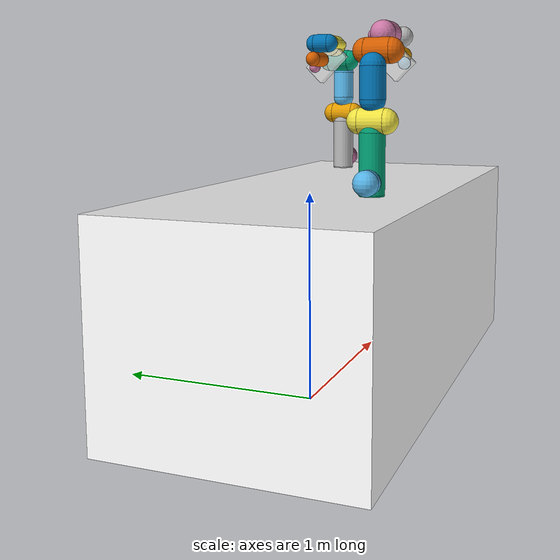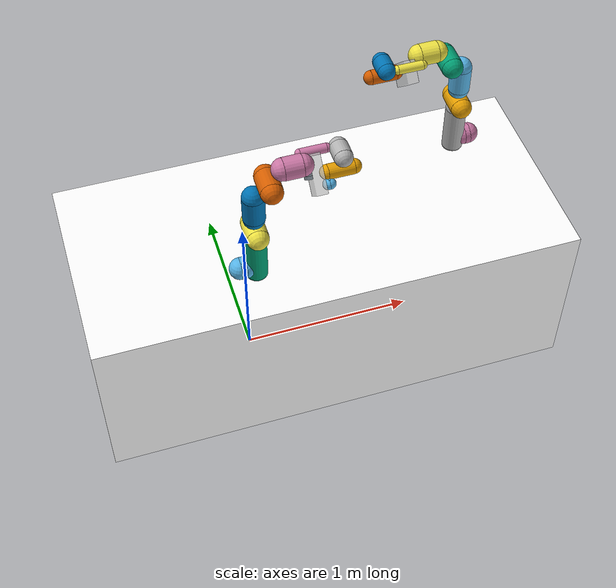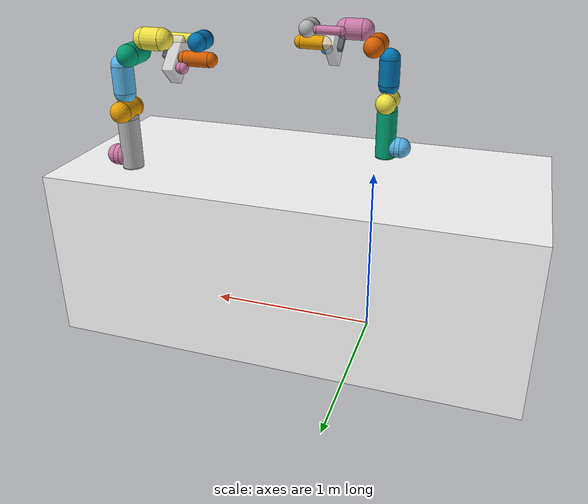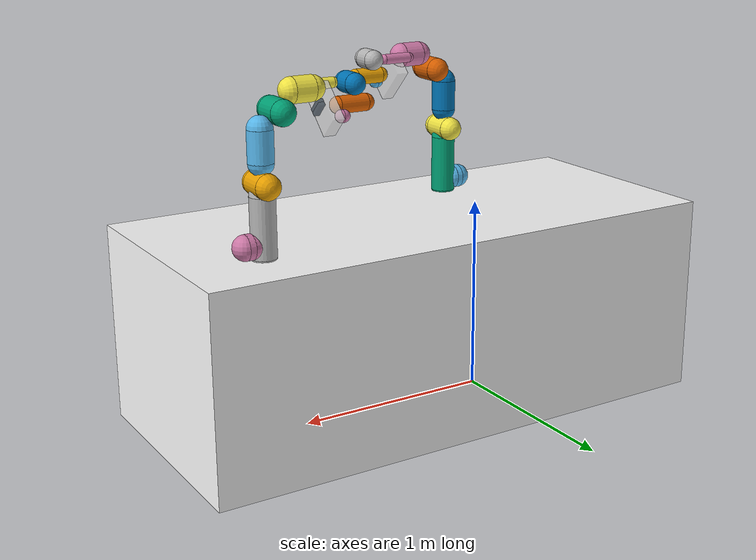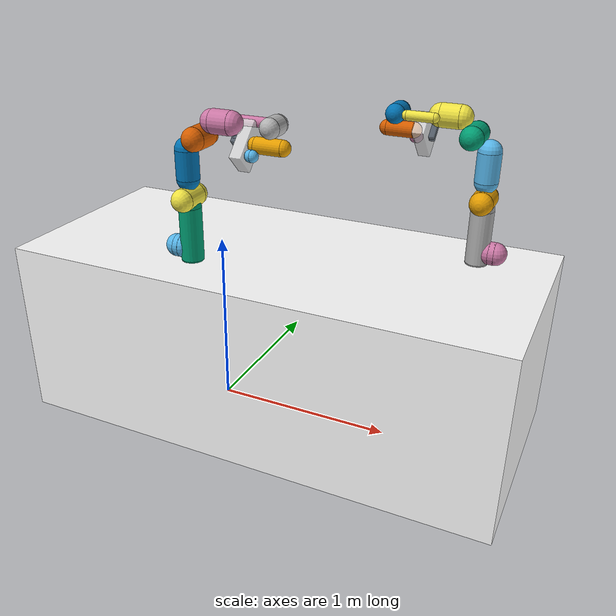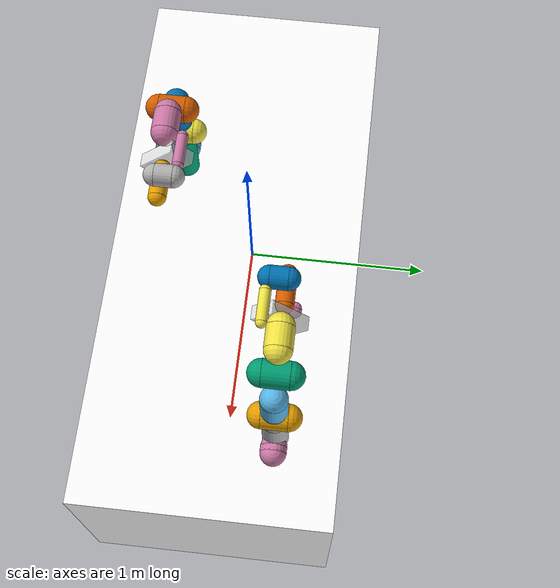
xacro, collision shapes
<?xml version="1.0" encoding="utf-8"?>
<robot xmlns:xacro="http://www.ros.org/wiki/xacro" name="panda">
  <xacro:include filename="$(find franka_description)/robots/panda_arm.xacro"/>
  <xacro:include filename="$(find franka_description)/robots/hand.xacro"/>
  <xacro:include filename="dyros_assembly_gripper.xacro"/>
  <xacro:include filename="dyros_assembly_gripper2.xacro"/>

  <!-- box shaped table as base for the 3 Pandas -->
  <link name="base">
    <visual>
      <origin xyz="0.4 0 0.5" rpy="0 0 0"/>
      <geometry>
        <box size="2.7 1.2 1" />
      </geometry>
      <material name="White">
        <color rgba="1.0 1.0 1.0 1.0"/>
      </material>
    </visual>
    <collision>
      <origin xyz="0.4 0 0.5" rpy="0 0 0  "/>
      <geometry>
        <box size="2.7 1.2 1" />
      </geometry>
    </collision>
  </link>

  <!-- right arm with gripper -->
  <xacro:panda_arm arm_id="panda_right" connected_to="base"  xyz="0 -0.3 1.006"
  sd0="0.01" sd1="0.01" sd2="0.01" sd3="0.01" sd4="0.01" sd5="0.01" sd6="0.01" sd7="0.01" sd8="0.001" cable="0.15"
a1="-0.00153055068483914" d1="-0.000772485919009139" theta1="-0.00374187596482555" alpha1="-0.00183369895482027"
a2="0.000163834922530543" d2="-0.000212890734425727" theta2="-0.0041768339596184" alpha2="0.00292223805919776"
a3="-2.60271767179549e-05" d3="-0.00100930869860036" theta3="0.00208915153420725" alpha3="-0.00362801030623702"
a4="0.0002126348171224" d4="0.00108679894872676" theta4="9.81965015663654e-05" alpha4="0.00292912798333623"
a5="-0.00136529072609946" d5="-5.62799006356164e-05" theta5="0.0139799357258803" alpha5="-0.00122374898174726"
a6="-0.000502587880406569" d6="0.000336192838117574" theta6="-0.0139808833528828" alpha6="-0.00268675457630875"
a7="-0.00104647166032287" d7="0.000135297170834114" theta7="0.00498364620994882" alpha7="0.000349775306996936" />
  <xacro:dyros_assembly_gripper2 ns="panda_right" rpy="0 0 ${-pi/4}" connected_to="panda_right_link8" />

   <!-- top arm with gripper -->
  <xacro:panda_arm arm_id="panda_top" connected_to="base"  xyz="1.35 0.3 1.006" rpy="0 0 ${pi}"
  sd0="0.01" sd1="0.01" sd2="0.01" sd3="0.01" sd4="0.01" sd5="0.005" sd6="0.005" sd7="0.01" sd8="0.001" cable="0.005"
a1="-0.000171539356569936" d1="0.000591551783574421" theta1="0.00119525002639617" alpha1="-0.00650097874689066"
a2="-0.000330274824097498" d2="-0.000124214443868683" theta2="7.10962210595555e-05" alpha2="0.00166835357174836"
a3="-0.00027921463294522" d3="-0.000683991542242173" theta3="0.00203760570771006" alpha3="-0.0018819778569208"
a4="-0.000355247972007034" d4="0.000891508331427601" theta4="-0.00513318787489872" alpha4="0.000168196477584221"
a5="0.000190817101859644" d5="-0.000635118518697479" theta5="0.00445732420517835" alpha5="-0.00167223312645046"
a6="-0.000244350284995939" d6="-0.000209543585115151" theta6="0.000118913154576129" alpha6="-0.00356076901549127"
a7="-0.000484192538997231" d7="4.41640702632187e-05" theta7="-0.0155483388661319" alpha7="0.000602582057747216" />
  <xacro:dyros_assembly_gripper2 ns="panda_top" rpy="0 0 ${-pi/4}" connected_to="panda_top_link8" />

</robot>

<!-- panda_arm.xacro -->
<robot xmlns:xacro="http://www.ros.org/wiki/xacro" name="panda">
  <!-- safety_distance: Minimum safety distance in [m] by which the collision volumes are expanded and which is enforced during robot motions -->
  <!-- arm_id: Namespace of the panda arm. Serves to differentiate between arms in case of multiple instances. -->
  <xacro:macro name="panda_arm" params="arm_id:='panda' description_pkg:='franka_description' connected_to:='' xyz:='0 0 0' rpy:='0 0 0' safety_distance:=0">
    <xacro:unless value="${not connected_to}">
      <joint name="${arm_id}_joint_${connected_to}" type="fixed">
        <parent link="${connected_to}"/>
        <child link="${arm_id}_link0"/>
        <origin rpy="${rpy}" xyz="${xyz}"/>
      </joint>
    </xacro:unless>
    <link name="${arm_id}_link0">
      <visual>
        <geometry>
          <mesh filename="package://${description_pkg}/meshes/visual/link0.dae"/>
        </geometry>
      </visual>
      <collision>
        <origin xyz="-0.075 0 0.06" rpy="0 ${pi/2} 0"/>
        <geometry>
          <cylinder radius="${0.06+safety_distance}" length="0.03" />
        </geometry>
      </collision>
      <collision>
        <origin xyz="-0.06 0 0.06" rpy="0 0 0"/>
        <geometry>
          <sphere radius="${0.06+safety_distance}" />
        </geometry>
      </collision>
      <collision>
        <origin xyz="-0.09 0 0.06" rpy="0 0 0"/>
        <geometry>
          <sphere radius="${0.06+safety_distance}" />
        </geometry>
      </collision>
    </link>
    <link name="${arm_id}_link1">
      <visual>
        <geometry>
          <mesh filename="package://${description_pkg}/meshes/visual/link1.dae"/>
        </geometry>
      </visual>
      <collision>
        <origin xyz="0 0 -0.1915" rpy="0 0 0"/>
        <geometry>
          <cylinder radius="${0.06+safety_distance}" length="0.2830" />
        </geometry>
      </collision>
      <collision>
        <origin xyz="0 0 -0.333" rpy="0 0 0"/>
        <geometry>
          <sphere radius="${0.06+safety_distance}" />
        </geometry>
      </collision>
      <collision>
        <origin xyz="0 0 -0.05" rpy="0 0 0"/>
        <geometry>
          <sphere radius="${0.06+safety_distance}" />
        </geometry>
      </collision>
    </link>
    <joint name="${arm_id}_joint1" type="revolute">
      <safety_controller k_position="100.0" k_velocity="40.0" soft_lower_limit="-2.8973" soft_upper_limit="2.8973"/>
      <origin rpy="0 0 0" xyz="0 0 0.333"/>
      <parent link="${arm_id}_link0"/>
      <child link="${arm_id}_link1"/>
      <axis xyz="0 0 1"/>
      <limit effort="87" lower="-2.8973" upper="2.8973" velocity="2.1750"/>
    </joint>
    <link name="${arm_id}_link2">
      <visual>
        <geometry>
          <mesh filename="package://${description_pkg}/meshes/visual/link2.dae"/>
        </geometry>
      </visual>
      <collision>
        <origin xyz="0 0 0" rpy="0 0 0"/>
        <geometry>
          <cylinder radius="${0.06+safety_distance}" length="0.12" />
        </geometry>
      </collision>
      <collision>
        <origin xyz="0 0 -0.06" rpy="0 0 0"/>
        <geometry>
          <sphere radius="${0.06+safety_distance}" />
        </geometry>
      </collision>
      <collision>
        <origin xyz="0 0 0.06" rpy="0 0 0"/>
        <geometry>
          <sphere radius="${0.06+safety_distance}" />
        </geometry>
      </collision>
    </link>
    <joint name="${arm_id}_joint2" type="revolute">
      <safety_controller k_position="100.0" k_velocity="40.0" soft_lower_limit="-1.7628" soft_upper_limit="1.7628"/>
      <origin rpy="${-pi/2} 0 0" xyz="0 0 0"/>
      <parent link="${arm_id}_link1"/>
      <child link="${arm_id}_link2"/>
      <axis xyz="0 0 1"/>
      <limit effort="87" lower="-1.7628" upper="1.7628" velocity="2.1750"/>
    </joint>
    <link name="${arm_id}_link3">
      <visual>
        <geometry>
          <mesh filename="package://${description_pkg}/meshes/visual/link3.dae"/>
        </geometry>
      </visual>
      <collision>
        <origin xyz="0 0 -0.145" rpy="0 0 0"/>
        <geometry>
          <cylinder radius="${0.06+safety_distance}" length="0.15" />
        </geometry>
      </collision>
      <collision>
        <origin xyz="0 0 -0.22" rpy="0 0 0"/>
        <geometry>
          <sphere radius="${0.06+safety_distance}" />
        </geometry>
      </collision>
      <collision>
        <origin xyz="0 0 -0.07" rpy="0 0 0"/>
        <geometry>
          <sphere radius="${0.06+safety_distance}" />
        </geometry>
      </collision>
    </link>
    <joint name="${arm_id}_joint3" type="revolute">
      <safety_controller k_position="100.0" k_velocity="40.0" soft_lower_limit="-2.8973" soft_upper_limit="2.8973"/>
      <origin rpy="${pi/2} 0 0" xyz="0 -0.316 0"/>
      <parent link="${arm_id}_link2"/>
      <child link="${arm_id}_link3"/>
      <axis xyz="0 0 1"/>
      <limit effort="87" lower="-2.8973" upper="2.8973" velocity="2.1750"/>
    </joint>
    <link name="${arm_id}_link4">
      <visual>
        <geometry>
          <mesh filename="package://${description_pkg}/meshes/visual/link4.dae"/>
        </geometry>
      </visual>
      <collision>
        <origin xyz="0 0 0" rpy="0 0 0"/>
        <geometry>
          <cylinder radius="${0.06+safety_distance}" length="0.12" />
        </geometry>
      </collision>
      <collision>
        <origin xyz="0 0 0.06" rpy="0 0 0"/>
        <geometry>
          <sphere radius="${0.06+safety_distance}" />
        </geometry>
      </collision>
      <collision>
        <origin xyz="0 0 -0.06" rpy="0 0 0"/>
        <geometry>
          <sphere radius="${0.06+safety_distance}" />
        </geometry>
      </collision>
    </link>
    <joint name="${arm_id}_joint4" type="revolute">
      <safety_controller k_position="100.0" k_velocity="40.0" soft_lower_limit="-3.0718" soft_upper_limit="-0.0698"/>
      <origin rpy="${pi/2} 0 0" xyz="0.0825 0 0"/>
      <parent link="${arm_id}_link3"/>
      <child link="${arm_id}_link4"/>
      <axis xyz="0 0 1"/>
      <limit effort="87" lower="-3.0718" upper="-0.0698" velocity="2.1750"/>
    </joint>
    <link name="${arm_id}_link5">
      <visual>
        <geometry>
          <mesh filename="package://${description_pkg}/meshes/visual/link5.dae"/>
        </geometry>
      </visual>
      <collision>
        <origin xyz="0 0 -0.26" rpy="0 0 0"/>
        <geometry>
          <cylinder radius="${0.06+safety_distance}" length="0.1" />
        </geometry>
      </collision>
      <collision>
        <origin xyz="0 0 -0.31" rpy="0 0 0"/>
        <geometry>
          <sphere radius="${0.06+safety_distance}" />
        </geometry>
      </collision>
      <collision>
        <origin xyz="0 0 -0.21" rpy="0 0 0"/>
        <geometry>
          <sphere radius="${0.06+safety_distance}" />
        </geometry>
      </collision>
      <collision>
        <origin xyz="0 0.08 -0.13" rpy="0 0 0"/>
        <geometry>
          <cylinder radius="${0.025+safety_distance}" length="0.14" />
        </geometry>
      </collision>
      <collision>
        <origin xyz="0 0.08 -0.06" rpy="0 0 0"/>
        <geometry>
          <sphere radius="${0.025+safety_distance}" />
        </geometry>
      </collision>
      <collision>
        <origin xyz="0 0.08 -0.20" rpy="0 0 0"/>
        <geometry>
          <sphere radius="${0.025+safety_distance}" />
        </geometry>
      </collision>

    </link>
    <joint name="${arm_id}_joint5" type="revolute">
      <safety_controller k_position="100.0" k_velocity="40.0" soft_lower_limit="-2.8973" soft_upper_limit="2.8973"/>
      <origin rpy="${-pi/2} 0 0" xyz="-0.0825 0.384 0"/>
      <parent link="${arm_id}_link4"/>
      <child link="${arm_id}_link5"/>
      <axis xyz="0 0 1"/>
      <limit effort="12" lower="-2.8973" upper="2.8973" velocity="2.6100"/>
    </joint>
    <link name="${arm_id}_link6">
      <visual>
        <geometry>
          <mesh filename="package://${description_pkg}/meshes/visual/link6.dae"/>
        </geometry>
      </visual>
      <collision>
        <origin xyz="0 0 -0.03" rpy="0 0 0"/>
        <geometry>
          <cylinder radius="${0.05+safety_distance}" length="0.08" />
        </geometry>
      </collision>
      <collision>
        <origin xyz="0 0 0.01" rpy="0 0 0"/>
        <geometry>
          <sphere radius="${0.05+safety_distance}" />
        </geometry>
      </collision>
      <collision>
        <origin xyz="0 0 -0.07" rpy="0 0 0"/>
        <geometry>
          <sphere radius="${0.05+safety_distance}" />
        </geometry>
      </collision>
    </link>
    <joint name="${arm_id}_joint6" type="revolute">
      <safety_controller k_position="100.0" k_velocity="40.0" soft_lower_limit="-0.0175" soft_upper_limit="3.7525"/>
      <origin rpy="${pi/2} 0 0" xyz="0 0 0"/>
      <parent link="${arm_id}_link5"/>
      <child link="${arm_id}_link6"/>
      <axis xyz="0 0 1"/>
      <limit effort="12" lower="-0.0175" upper="3.7525" velocity="2.6100"/>
    </joint>
    <link name="${arm_id}_link7">
      <visual>
        <geometry>
          <mesh filename="package://${description_pkg}/meshes/visual/link7.dae"/>
        </geometry>
      </visual>
      <collision>
        <origin xyz="0 0 0.01" rpy="0 0 0"/>
        <geometry>
          <cylinder radius="${0.04+safety_distance}" length="0.14" />
        </geometry>
      </collision>
      <collision>
        <origin xyz="0 0 0.08" rpy="0 0 0"/>
        <geometry>
          <sphere radius="${0.04+safety_distance}"  />
        </geometry>
      </collision>
      <collision>
        <origin xyz="0 0 -0.06" rpy="0 0 0"/>
        <geometry>
          <sphere radius="${0.04+safety_distance}"  />
        </geometry>
      </collision>
    </link>
    <joint name="${arm_id}_joint7" type="revolute">
      <safety_controller k_position="100.0" k_velocity="40.0" soft_lower_limit="-2.8973" soft_upper_limit="2.8973"/>
      <origin rpy="${pi/2} 0 0" xyz="0.088 0 0"/>
      <parent link="${arm_id}_link6"/>
      <child link="${arm_id}_link7"/>
      <axis xyz="0 0 1"/>
      <limit effort="12" lower="-2.8973" upper="2.8973" velocity="2.6100"/>
    </joint>
    <link name="${arm_id}_link8">
      <collision>
        <origin xyz="0.0424 0.0424 -0.0250" rpy="${pi} ${pi/2} ${pi/2}"/>
        <geometry>
          <cylinder radius="${0.03+safety_distance}"  length="0.01" />
        </geometry>
      </collision>
      <collision>
        <origin xyz="0.0424 0.0424 -0.02" rpy="0 0 0"/>
        <geometry>
          <sphere radius="${0.03+safety_distance}"  />
        </geometry>
      </collision>
      <collision>
        <origin xyz="0.0424 0.0424 -0.03" rpy="0 0 0"/>
        <geometry>
          <sphere radius="${0.03+safety_distance}"  />
        </geometry>
      </collision>
    </link>
    <joint name="${arm_id}_joint8" type="fixed">
      <origin rpy="0 0 0" xyz="0 0 0.107"/>
      <parent link="${arm_id}_link7"/>
      <child link="${arm_id}_link8"/>
    </joint>
  </xacro:macro>
</robot>

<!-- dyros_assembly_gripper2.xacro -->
<robot xmlns:xacro="http://www.ros.org/wiki/xacro" name="dyros_assembly_gripper2">
  <xacro:macro name="dyros_assembly_gripper2" params="connected_to:='' ns:='' rpy:='0 0 0' xyz:='0 0 0' tcp_xyz:='0 0 0.0825' tcp_rpy:='0 0 0' ">
    <xacro:unless value="${connected_to == ''}">
      <joint name="${ns}_hand_joint" type="fixed">
        <parent link="${connected_to}"/>
        <child link="${ns}_hand"/>
        <origin xyz="${xyz}" rpy="${rpy}"/>
      </joint>
    </xacro:unless>
    <link name="${ns}_hand">
      <visual>
        <origin xyz="0 0 0" rpy="-1.57 0 -1.57"/>
        <geometry>
          <mesh filename="package://assembly_env_description/meshes/gripper2_base.stl" scale="0.001 0.001 0.001"/>
        </geometry>
        <material name="white">
          <color rgba="0.9 0.9 0.9 0.75"/>
        </material>
      </visual>
      <collision>
        <origin xyz="0.017 0 0.029" rpy="0 0 0"/>
        <geometry>

          <box size="0.125 0.21 0.06"/>

        </geometry>
      </collision>
      <inertial>
        <mass value="0.55"/>
        <inertia ixx="0.0014362" ixy="0.000013" ixz="-0.0000278" iyy="0.00077" iyz="-0.0000000" izz="0.001039"/>
      </inertial>
    </link>

    <!-- Define the hand_tcp frame -->
    <link name="${ns}_hand_tcp" />
    <joint name="${ns}_hand_tcp_joint" type="fixed">
      <origin xyz="${tcp_xyz}" rpy="${tcp_rpy}" />
      <parent link="${ns}_hand" />
      <child link="${ns}_hand_tcp" />
    </joint>

    <joint name="${ns}_finger_right_joint" type="prismatic">
      <parent link="${ns}_hand"/>
      <child link="${ns}_finger_right_link"/>
      <origin xyz="0 0.009 +0.0590" rpy="0 0 0"/>
      <axis xyz="0 +1 0"/>
      <limit lower="-0.1" upper="0.15" effort="1000000" velocity="1000000"/>
    </joint>
    <link name="${ns}_finger_right_link">
      <visual>
        <origin xyz="0 0 0" rpy="-1.57 0 -1.57"/>
        <geometry>
          <mesh filename="package://assembly_env_description/meshes/gripper2_tip.stl" scale="0.001 0.001 0.001"/>
        </geometry>
        <material name="gray">
          <color rgba="0.25 0.3 0.35 0.75"/>
        </material>
      </visual>
      <collision>
        <origin xyz="0 0 0.01" rpy="0 0 0"/>
        <geometry>

          <box size="0.08 0.0185 0.035"/>

        </geometry>
      </collision>
    </link>

    <joint name="${ns}_finger_left_joint" type="prismatic">
      <parent link="${ns}_hand"/>
      <child link="${ns}_finger_left_link"/>
      <origin xyz="0 -0.009 +0.0590" rpy="0 0 0"/>
      <axis xyz="0 -1 0"/>
      <limit lower="-0.1" upper="0.15" effort="1000000" velocity="1000000"/>
    </joint>
    <link name="${ns}_finger_left_link">
      <visual>
        <origin xyz="0 0 0" rpy="-1.57 0 -1.57"/>
        <geometry>
          <mesh filename="package://assembly_env_description/meshes/gripper2_tip.stl" scale="0.001 0.001 0.001"/>
        </geometry>
        <material name="gray">
          <color rgba="0.25 0.3 0.35 0.75"/>
        </material>
      </visual>
      <collision>
        <origin xyz="0 0 0.01" rpy="0 0 0"/>
        <geometry>

          <box size="0.08 0.0185 0.035"/>

        </geometry>
      </collision>
    </link>

  </xacro:macro>
</robot>
